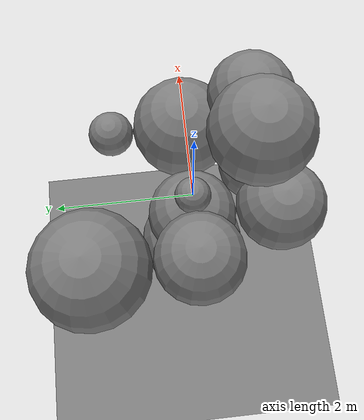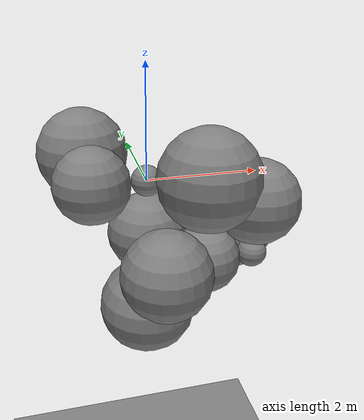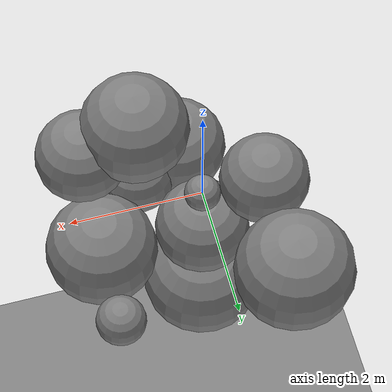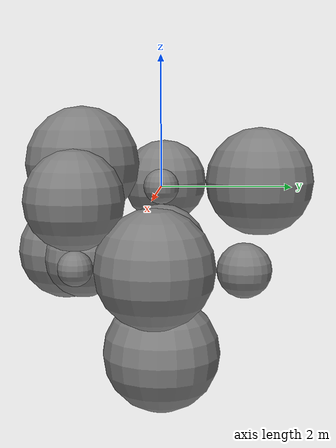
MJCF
<mujoco model="unnamed_model">
  <default>
    <default class="/"/>
  </default>
  <worldbody>
    <geom name="//unnamed_geom_0" class="/" type="plane" size="100 100 0.10000000000000001" pos="0 0 -10"/>
    <body name="body0" pos="0 0 0">
      <joint name="//unnamed_joint_0" class="/" type="free"/>
      <geom name="//unnamed_geom_1" class="/" type="sphere" size="0.27277871723735969 0.27277871723735969 0.27277871723735969"/>
      <body name="body1" pos="0 0 -0.9941050248104879">
        <geom name="//unnamed_geom_2" class="/" type="sphere" size="0.72132630757312821 0.72132630757312821 0.72132630757312821"/>
        <joint name="//unnamed_joint_1" class="/" type="hinge" axis="0 0 -1"/>
        <body name="body2" pos="1.5734808438322592 0 0">
          <geom name="//unnamed_geom_3" class="/" type="sphere" size="0.85215453625913096 0.85215453625913096 0.85215453625913096"/>
          <joint name="//unnamed_joint_2" class="/" type="hinge" axis="1 0 0"/>
          <body name="body4" pos="0 -1.1019040628729289 0">
            <geom name="//unnamed_geom_4" class="/" type="sphere" size="0.2497495266137979 0.2497495266137979 0.2497495266137979"/>
            <joint name="//unnamed_joint_3" class="/" type="ball" axis="0 -1 0"/>
            <body name="body6" pos="-0.82573328149127834 0 0">
              <geom name="//unnamed_geom_5" class="/" type="sphere" size="0.57598375487748044 0.57598375487748044 0.57598375487748044"/>
              <joint name="//unnamed_joint_4" class="/" type="ball" axis="-1 0 0"/>
              <body name="body9" pos="0 0 1.4039954636808969">
                <geom name="//unnamed_geom_6" class="/" type="sphere" size="0.82801170880341657 0.82801170880341657 0.82801170880341657"/>
                <joint name="//unnamed_joint_5" class="/" type="hinge" axis="0 0 1"/>
              </body>
            </body>
            <body name="body7" pos="0 0 0.95185686615205745">
              <geom name="//unnamed_geom_7" class="/" type="sphere" size="0.70210733953825955 0.70210733953825955 0.70210733953825955"/>
              <joint name="//unnamed_joint_6" class="/" type="ball" axis="0 0 1"/>
            </body>
          </body>
          <body name="body10" pos="0 1.2332698389411669 0">
            <geom name="//unnamed_geom_8" class="/" type="sphere" size="0.38111530268203597 0.38111530268203597 0.38111530268203597"/>
            <joint name="//unnamed_joint_7" class="/" type="hinge" axis="0 1 0"/>
          </body>
        </body>
        <body name="body8" pos="0 -1.4728165371561843 0">
          <geom name="//unnamed_geom_9" class="/" type="sphere" size="0.75149022958305611 0.75149022958305611 0.75149022958305611"/>
          <joint name="//unnamed_joint_8" class="/" type="hinge" axis="0 -1 0"/>
        </body>
        <body name="body11" pos="0 0 -1.6560063996771071">
          <geom name="//unnamed_geom_10" class="/" type="sphere" size="0.93468009210397884 0.93468009210397884 0.93468009210397884"/>
          <joint name="//unnamed_joint_9" class="/" type="ball" axis="0 0 -1"/>
        </body>
      </body>
      <body name="body3" pos="-0.95102091983029047 0 0">
        <geom name="//unnamed_geom_11" class="/" type="sphere" size="0.67824220259293078 0.67824220259293078 0.67824220259293078"/>
        <joint name="//unnamed_joint_10" class="/" type="ball" axis="-1 0 0"/>
        <body name="body5" pos="0 1.5676967774560975 0">
          <geom name="//unnamed_geom_12" class="/" type="sphere" size="0.88945457486316659 0.88945457486316659 0.88945457486316659"/>
          <joint name="//unnamed_joint_11" class="/" type="hinge" axis="0 1 0"/>
        </body>
      </body>
    </body>
  </worldbody>
  <actuator>
    <motor name="//unnamed_actuator_0" class="/" ctrllimited="true" ctrlrange="-1 1" joint="//unnamed_joint_0"/>
    <motor name="//unnamed_actuator_1" class="/" ctrllimited="true" ctrlrange="-1 1" joint="//unnamed_joint_1"/>
    <motor name="//unnamed_actuator_2" class="/" ctrllimited="true" ctrlrange="-1 1" joint="//unnamed_joint_2"/>
    <motor name="//unnamed_actuator_3" class="/" ctrllimited="true" ctrlrange="-1 1" joint="//unnamed_joint_3"/>
    <motor name="//unnamed_actuator_4" class="/" ctrllimited="true" ctrlrange="-1 1" joint="//unnamed_joint_4"/>
    <motor name="//unnamed_actuator_5" class="/" ctrllimited="true" ctrlrange="-1 1" joint="//unnamed_joint_5"/>
    <motor name="//unnamed_actuator_6" class="/" ctrllimited="true" ctrlrange="-1 1" joint="//unnamed_joint_6"/>
    <motor name="//unnamed_actuator_7" class="/" ctrllimited="true" ctrlrange="-1 1" joint="//unnamed_joint_7"/>
    <motor name="//unnamed_actuator_8" class="/" ctrllimited="true" ctrlrange="-1 1" joint="//unnamed_joint_8"/>
    <motor name="//unnamed_actuator_9" class="/" ctrllimited="true" ctrlrange="-1 1" joint="//unnamed_joint_9"/>
    <motor name="//unnamed_actuator_10" class="/" ctrllimited="true" ctrlrange="-1 1" joint="//unnamed_joint_10"/>
    <motor name="//unnamed_actuator_11" class="/" ctrllimited="true" ctrlrange="-1 1" joint="//unnamed_joint_11"/>
  </actuator>
</mujoco>
